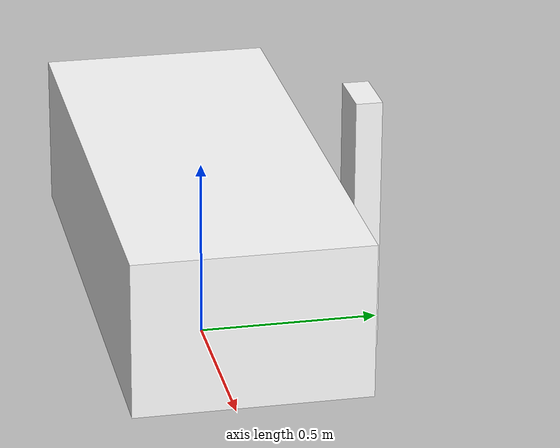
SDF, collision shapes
<?xml version='1.0'?>
<sdf version='1.7'>
  <model name='Bathtub'>
    <link name='base_link'>
      <self_collide>0</self_collide>
      <enable_wind>0</enable_wind>
      <kinematic>0</kinematic>
      <inertial>
        <inertia>
          <ixx>0</ixx>
          <ixy>0</ixy>
          <ixz>0</ixz>
          <iyy>0</iyy>
          <iyz>0</iyz>
          <izz>0</izz>
        </inertia>
        <mass>0</mass>
        <pose>0 0 0 0 -0 0</pose>
      </inertial>
      <pose>0 0 0 0 -0 0</pose>
      <gravity>1</gravity>
      <visual name='visual'>
        <geometry>
          <mesh>
            <uri>/home/aeneas/.ignition/fuel/fuel.ignitionrobotics.org/openrobotics/models/bathtub/1/meshes/bathtub.dae</uri>
            <scale>0.8 0.8 1</scale>
          </mesh>
        </geometry>
        <material>
          <diffuse>1 1 1 1</diffuse>
          <specular>1 1 1 1</specular>
          <pbr>
            <metal>
              <albedo_map>materials/textures/Bathtub_Albedo.jpg</albedo_map>
              <normal_map>materials/textures/Bathtub_Normal.png</normal_map>
              <roughness_map>materials/textures/Bathtub_Roughness.jpg</roughness_map>
              <metalness_map>materials/textures/Bathtub_Metalness.jpg</metalness_map>
            </metal>
          </pbr>
          <shader type='pixel'>
            <normal_map>__default__</normal_map>
          </shader>
          <script>
            <name>ModelPreview_18::base_link::visual_MATERIAL_</name>
            <uri>__default__</uri>
          </script>
          <ambient>1 1 1 1</ambient>
          <emissive>0 0 0 1</emissive>
        </material>
        <pose>0 0 0 0 -0 0</pose>
        <transparency>0</transparency>
        <cast_shadows>1</cast_shadows>
      </visual>
      <collision name='Box003'>
        <laser_retro>0</laser_retro>
        <max_contacts>10</max_contacts>
        <pose>0 0 0.341135 0 -0 0</pose>
        <geometry>
          <box>
            <size>1.45741 0.6335 0.426196</size>
          </box>
        </geometry>
        <surface>
          <friction>
            <ode>
              <mu>1</mu>
              <mu2>1</mu2>
              <fdir1>0 0 0</fdir1>
              <slip1>0</slip1>
              <slip2>0</slip2>
            </ode>
            <torsional>
              <coefficient>1</coefficient>
              <patch_radius>0</patch_radius>
              <surface_radius>0</surface_radius>
              <use_patch_radius>1</use_patch_radius>
              <ode>
                <slip>0</slip>
              </ode>
            </torsional>
          </friction>
          <bounce>
            <restitution_coefficient>0</restitution_coefficient>
            <threshold>1e+06</threshold>
          </bounce>
          <contact>
            <collide_without_contact>0</collide_without_contact>
            <collide_without_contact_bitmask>1</collide_without_contact_bitmask>
            <collide_bitmask>1</collide_bitmask>
            <ode>
              <soft_cfm>0</soft_cfm>
              <soft_erp>0.2</soft_erp>
              <kp>1e+13</kp>
              <kd>1</kd>
              <max_vel>0.01</max_vel>
              <min_depth>0</min_depth>
            </ode>
            <bullet>
              <split_impulse>1</split_impulse>
              <split_impulse_penetration_threshold>-0.01</split_impulse_penetration_threshold>
              <soft_cfm>0</soft_cfm>
              <soft_erp>0.2</soft_erp>
              <kp>1e+13</kp>
              <kd>1</kd>
            </bullet>
          </contact>
        </surface>
      </collision>
      <collision name='Box002'>
        <laser_retro>0</laser_retro>
        <max_contacts>10</max_contacts>
        <pose>0.100994 0.424134 0.359413 0 -0 0</pose>
        <geometry>
          <box>
            <size>0.161708 0.072592 0.718826</size>
          </box>
        </geometry>
        <surface>
          <friction>
            <ode>
              <mu>1</mu>
              <mu2>1</mu2>
              <fdir1>0 0 0</fdir1>
              <slip1>0</slip1>
              <slip2>0</slip2>
            </ode>
            <torsional>
              <coefficient>1</coefficient>
              <patch_radius>0</patch_radius>
              <surface_radius>0</surface_radius>
              <use_patch_radius>1</use_patch_radius>
              <ode>
                <slip>0</slip>
              </ode>
            </torsional>
          </friction>
          <bounce>
            <restitution_coefficient>0</restitution_coefficient>
            <threshold>1e+06</threshold>
          </bounce>
          <contact>
            <collide_without_contact>0</collide_without_contact>
            <collide_without_contact_bitmask>1</collide_without_contact_bitmask>
            <collide_bitmask>1</collide_bitmask>
            <ode>
              <soft_cfm>0</soft_cfm>
              <soft_erp>0.2</soft_erp>
              <kp>1e+13</kp>
              <kd>1</kd>
              <max_vel>0.01</max_vel>
              <min_depth>0</min_depth>
            </ode>
            <bullet>
              <split_impulse>1</split_impulse>
              <split_impulse_penetration_threshold>-0.01</split_impulse_penetration_threshold>
              <soft_cfm>0</soft_cfm>
              <soft_erp>0.2</soft_erp>
              <kp>1e+13</kp>
              <kd>1</kd>
            </bullet>
          </contact>
        </surface>
      </collision>
      <collision name='Box001'>
        <laser_retro>0</laser_retro>
        <max_contacts>10</max_contacts>
        <pose>-0.008087 -0.006919 0.077711 0 -0 0</pose>
        <geometry>
          <box>
            <size>0.958728 0.38892 0.155422</size>
          </box>
        </geometry>
        <surface>
          <friction>
            <ode>
              <mu>1</mu>
              <mu2>1</mu2>
              <fdir1>0 0 0</fdir1>
              <slip1>0</slip1>
              <slip2>0</slip2>
            </ode>
            <torsional>
              <coefficient>1</coefficient>
              <patch_radius>0</patch_radius>
              <surface_radius>0</surface_radius>
              <use_patch_radius>1</use_patch_radius>
              <ode>
                <slip>0</slip>
              </ode>
            </torsional>
          </friction>
          <bounce>
            <restitution_coefficient>0</restitution_coefficient>
            <threshold>1e+06</threshold>
          </bounce>
          <contact>
            <collide_without_contact>0</collide_without_contact>
            <collide_without_contact_bitmask>1</collide_without_contact_bitmask>
            <collide_bitmask>1</collide_bitmask>
            <ode>
              <soft_cfm>0</soft_cfm>
              <soft_erp>0.2</soft_erp>
              <kp>1e+13</kp>
              <kd>1</kd>
              <max_vel>0.01</max_vel>
              <min_depth>0</min_depth>
            </ode>
            <bullet>
              <split_impulse>1</split_impulse>
              <split_impulse_penetration_threshold>-0.01</split_impulse_penetration_threshold>
              <soft_cfm>0</soft_cfm>
              <soft_erp>0.2</soft_erp>
              <kp>1e+13</kp>
              <kd>1</kd>
            </bullet>
          </contact>
        </surface>
      </collision>
    </link>
    <static>1</static>
    <allow_auto_disable>1</allow_auto_disable>
  </model>
</sdf>
